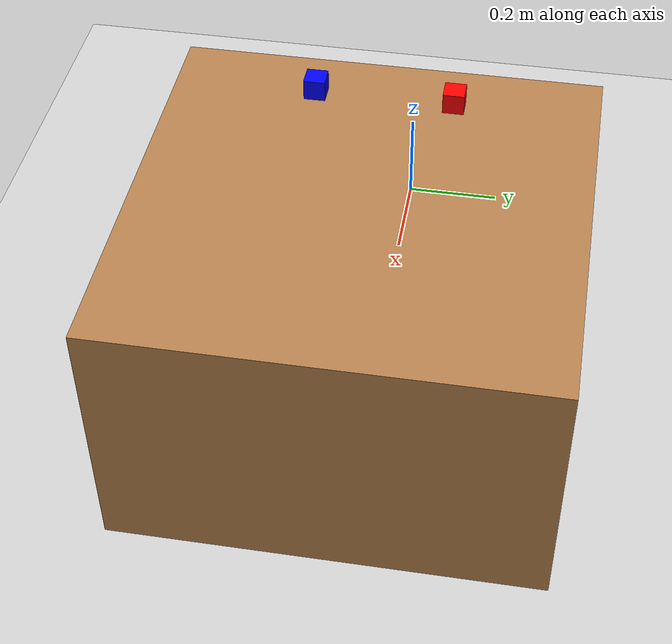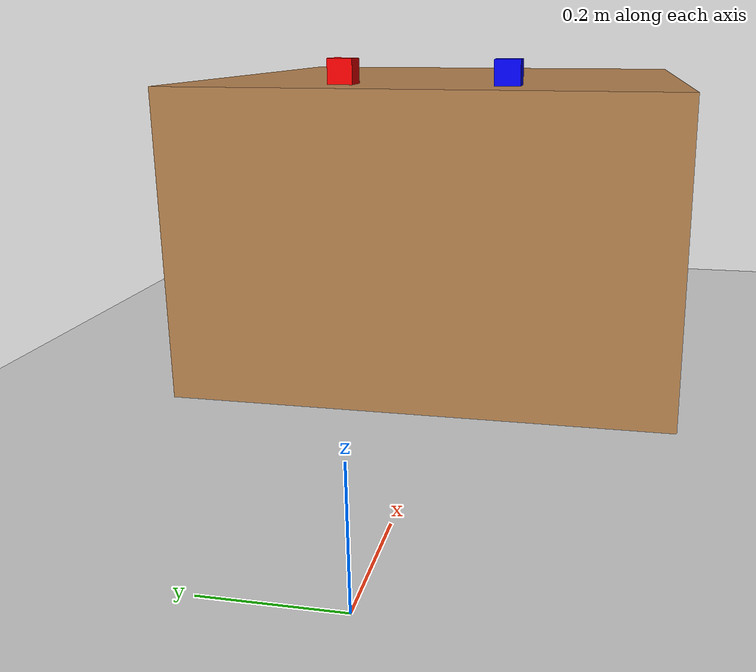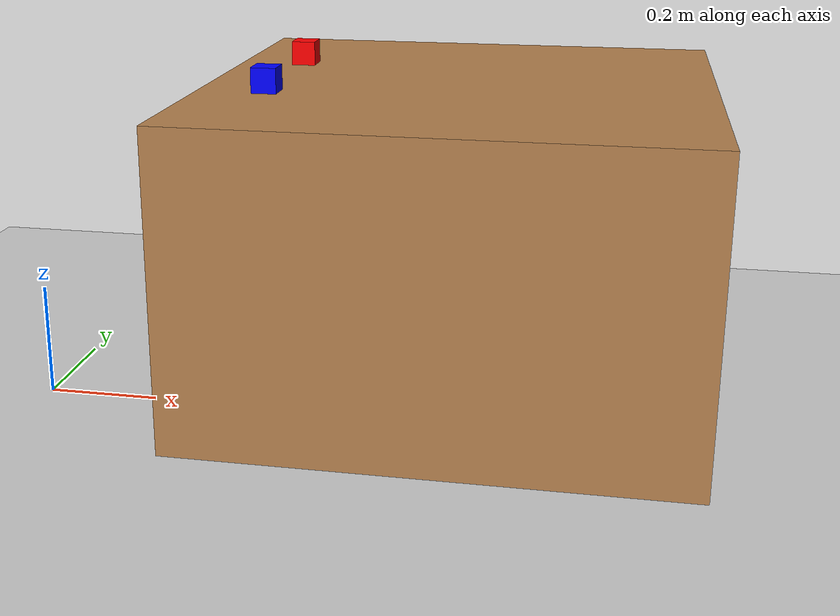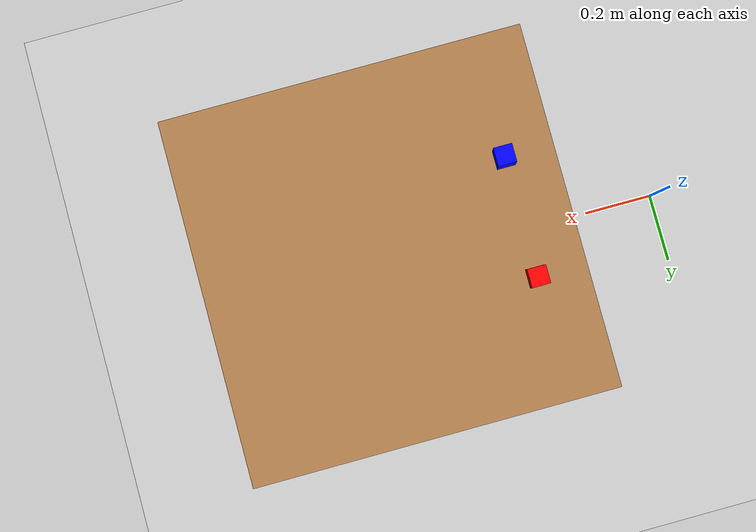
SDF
<?xml version="1.0" ?>
<sdf version="1.9">
  <world name="sorting_world">
<ambient>0.8 0.8 0.8 1</ambient>
<background>0.7 0.7 0.7 1</background>
<plugin
  filename="gz-sim-physics-system"
  name="gz::sim::systems::Physics"/>

<plugin
  filename="gz-sim-user-commands-system"
  name="gz::sim::systems::UserCommands"/>

<plugin
  filename="gz-sim-scene-broadcaster-system"
  name="gz::sim::systems::SceneBroadcaster"/>

<plugin
  filename="gz-sim-sensors-system"
  name="gz::sim::systems::Sensors">
  <render_engine>ogre2</render_engine>
</plugin>

    <light name="sun" type="directional">
      <cast_shadows>true</cast_shadows>
      <pose>0 0 10 0 0 0</pose>
      <diffuse>0.8 0.8 0.8 1</diffuse>
      <specular>0.2 0.2 0.2 1</specular>
      <direction>-0.5 0.1 -0.9</direction>
    </light>

    <model name="ground_plane">
      <static>true</static>
      <link name="link">
        <collision name="collision">
          <geometry>
            <plane>
              <normal>0 0 1</normal>
              <size>10 10</size>
            </plane>
          </geometry>
        </collision>
        <visual name="visual">
          <geometry>
            <plane>
              <normal>0 0 1</normal>
              <size>10 10</size>
            </plane>
          </geometry>
        </visual>
      </link>
    </model>

    <model name="table">
      <static>true</static>
      <pose>0.75 0 0.35 0 0 0</pose>
      <link name="link">
        <collision name="collision">
          <geometry>
            <box>
              <size>0.8 0.8 0.5</size>
            </box>
          </geometry>
        </collision>
        <visual name="visual">
          <geometry>
            <box>
              <size>0.8 0.8 0.5</size>
            </box>
          </geometry>
          <material>
            <ambient>0.7 0.5 0.3 1</ambient>
            <diffuse>0.7 0.5 0.3 1</diffuse>
          </material>
        </visual>
      </link>
    </model>

<model name="cube_blue_test">
  <static>false</static>
  <pose>0.46 -0.13 0.62 0 0 0</pose>
  <link name="link">
    <collision name="collision">
      <geometry><box><size>0.04 0.04 0.04</size></box></geometry>
      <surface>
  <friction>
    <ode>
      <mu>5.0</mu>
      <mu2>5.0</mu2>
    </ode>
  </friction>
  <contact>
    <ode>
      <kp>100000.0</kp>
      <kd>100.0</kd>
    </ode>
  </contact>
</surface>
    </collision>
    <visual name="visual">
      <geometry><box><size>0.04 0.04 0.04</size></box></geometry>
      <material>
        <ambient>0 0 1 1</ambient>
        <diffuse>0 0 1 1</diffuse>
      </material>
    </visual>
  </link>
</model>

<model name="grab_camera">
  <static>true</static>
  <pose>0.38 0 1.4 0 1.57079632679 0</pose>

  <link name="link">
    <sensor name="camera" type="camera">
      <always_on>true</always_on>
      <update_rate>30</update_rate>
      <visualize>true</visualize>
      <topic>/grab_camera</topic>

      <camera>
        <horizontal_fov>0.8</horizontal_fov>
        <image>
          <width>640</width>
          <height>480</height>
          <format>R8G8B8</format>
        </image>
        <clip>
          <near>0.05</near>
          <far>10.0</far>
        </clip>
      </camera>
    </sensor>
  </link>
</model>
<model name="red_cube_test">
  <static>false</static>
  <pose>0.46 0.13 0.62 0 0 0</pose>
  <link name="link">
    <collision name="collision">
      <geometry>
        <box>
          <size>0.04 0.04 0.04</size>
        </box>
      </geometry>
      <surface>
        <friction>
          <ode>
            <mu>5.0</mu>
            <mu2>5.0</mu2>
          </ode>
        </friction>
        <contact>
          <ode>
            <kp>100000.0</kp>
            <kd>100.0</kd>
          </ode>
        </contact>
      </surface>
    </collision>
    <visual name="visual">
      <geometry>
        <box>
          <size>0.04 0.04 0.04</size>
        </box>
      </geometry>
      <material>
        <ambient>1 0 0 1</ambient>
        <diffuse>1 0 0 1</diffuse>
      </material>
    </visual>
  </link>
</model>
<model name="overview_camera">
  <static>true</static>
  <pose>0.75 0.0 1.8 0 1.57079632679 0</pose>

  <link name="link">
    <sensor name="camera" type="camera">
      <always_on>true</always_on>
      <update_rate>30</update_rate>
      <visualize>true</visualize>
      <topic>/camera</topic>

      <camera>
        <horizontal_fov>1.047</horizontal_fov>
        <image>
          <width>640</width>
          <height>480</height>
          <format>R8G8B8</format>
        </image>
        <clip>
          <near>0.05</near>
          <far>10.0</far>
        </clip>
      </camera>
    </sensor>
  </link>
</model>

  </world>
</sdf>
